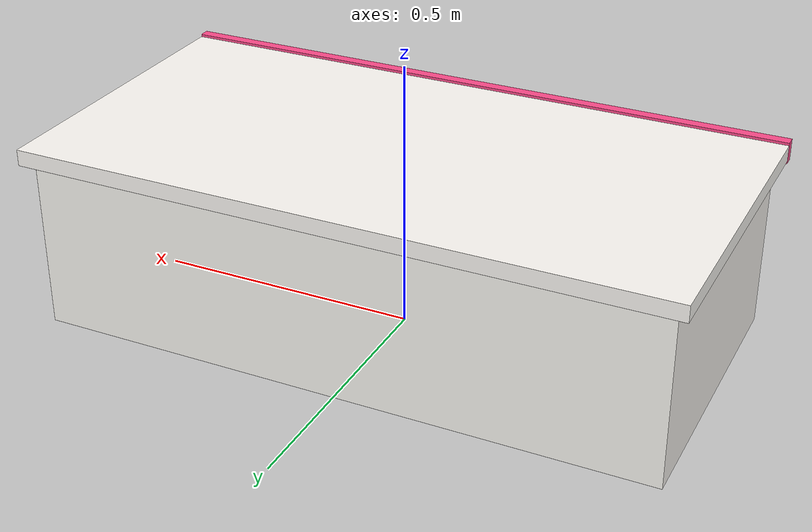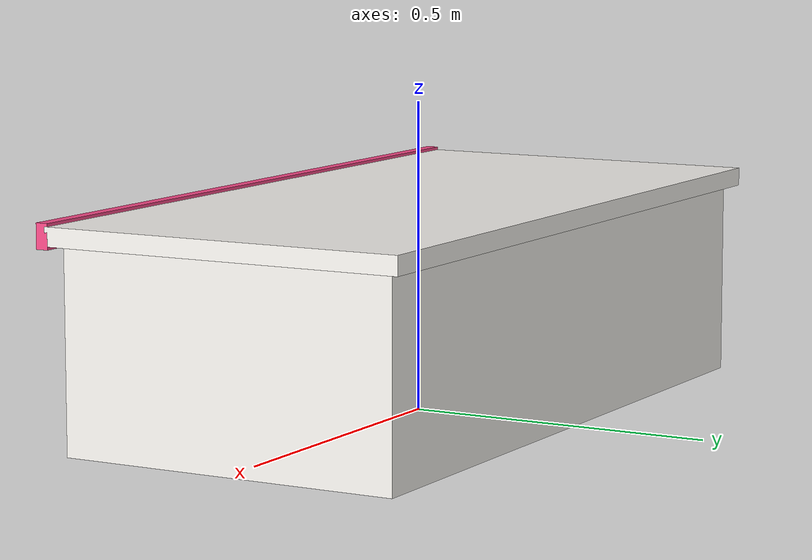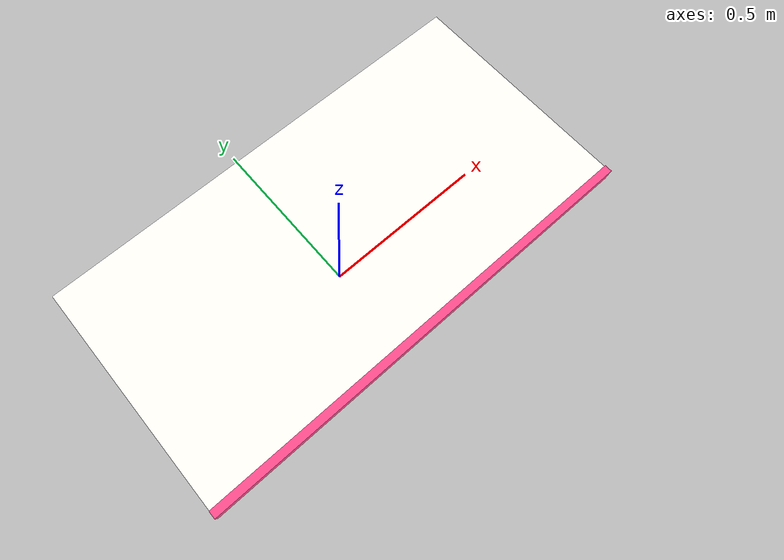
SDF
<?xml version='1.0' encoding='utf-8'?>
<sdf version="1.7">
  <model name="bar_counter">
    <static>true</static>
    <!-- bar counter - 1.2m x 0.6m x 0.35m. white body + white top + pink accent strip -->

    <!-- top: 1.2x0.6x0.03, top surface z=0.35. cream white -->
    <link name="counter_top">
      <pose>0 0 0.335 0 0 0</pose>
      <visual name="top_visual">
        <geometry>
          <box><size>1.2 0.6 0.03</size></box>
        </geometry>
        <material>
          <ambient>0.97 0.96 0.94 1</ambient>
          <diffuse>1.0 0.99 0.97 1</diffuse>
          <specular>0.25 0.25 0.25 1</specular>
        </material>
      </visual>
      <collision name="top_collision">
        <geometry>
          <box><size>1.2 0.6 0.03</size></box>
        </geometry>
      </collision>
    </link>

    <!-- body: 1.16x0.56x0.32. cream white -->
    <link name="counter_body">
      <pose>0 0 0.16 0 0 0</pose>
      <visual name="body_visual">
        <geometry>
          <box><size>1.16 0.56 0.32</size></box>
        </geometry>
        <material>
          <ambient>0.94 0.93 0.91 1</ambient>
          <diffuse>0.99 0.98 0.96 1</diffuse>
          <specular>0.18 0.18 0.18 1</specular>
        </material>
      </visual>
      <collision name="body_collision">
        <geometry>
          <box><size>1.16 0.56 0.32</size></box>
        </geometry>
      </collision>
    </link>

    <!-- accent strip - 1.2x0.02x0.04, front edge. deeper pink for contrast against body -->
    <link name="pink_strip">
      <pose>0 -0.305 0.335 0 0 0</pose>
      <visual name="strip_visual">
        <geometry>
          <box><size>1.2 0.02 0.04</size></box>
        </geometry>
        <material>
          <ambient>0.95 0.20 0.45 1</ambient>
          <diffuse>1.0 0.30 0.55 1</diffuse>
          <specular>0.3 0.3 0.3 1</specular>
          <emissive>0.05 0.02 0.03 1</emissive>
        </material>
      </visual>
    </link>
  </model>
</sdf>
